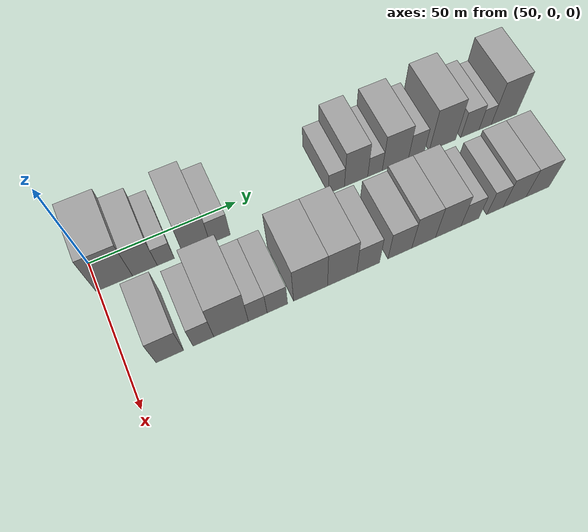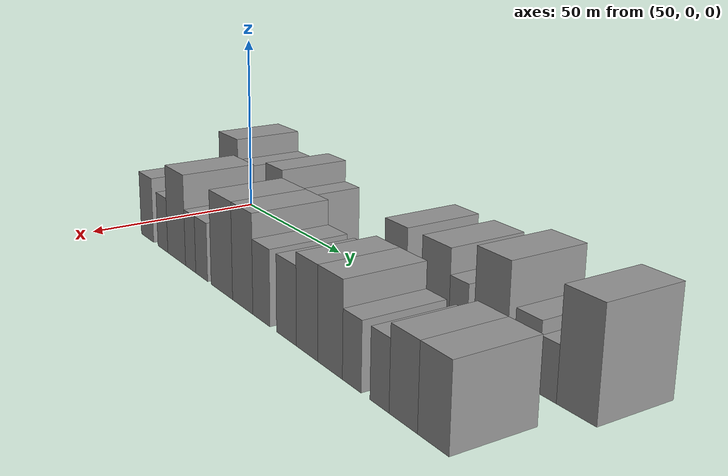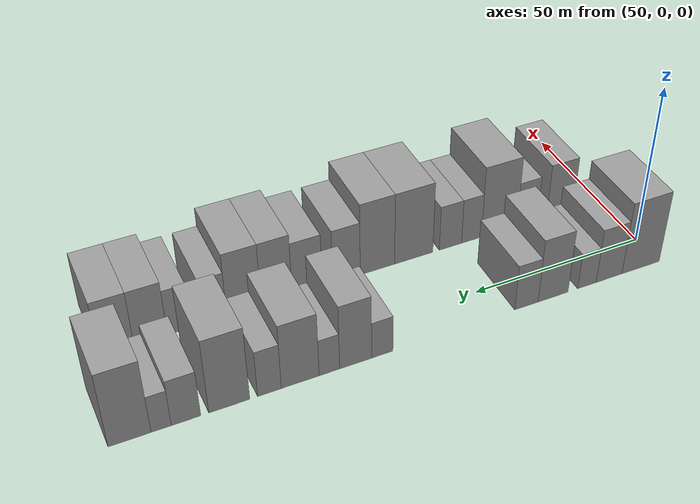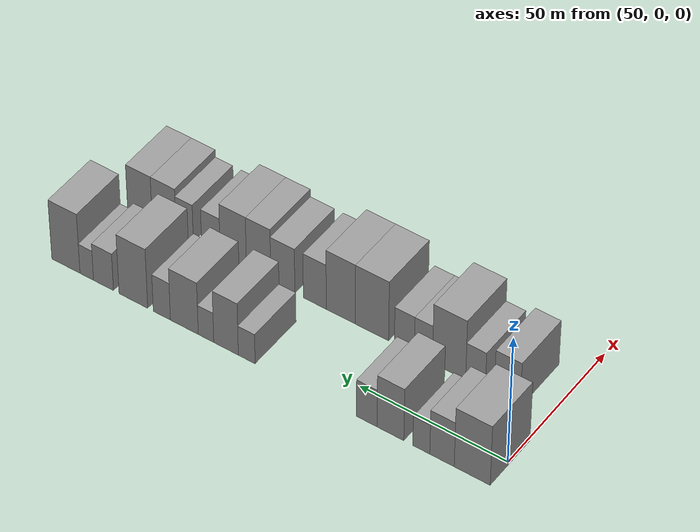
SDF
<sdf version="1.6">
 <world name="default">
  <model name="building_26">
   <static>1</static>
   <pose>50.0000 5.2599 0 0.000000 0.000000 0.000000</pose>
   <link name="link">
    <pose>0 0 12.00 0 0 0</pose>
    <collision name="collision"><geometry><box><size>20.0000 11.9224 24.0000</size></box></geometry></collision>
    <visual name="visual">
     <cast_shadows>0</cast_shadows>
     <geometry><box><size>20.0000 11.9224 24.0000</size></box></geometry>
     <material>
      <script>
       <uri>model://grey_wall/materials/scripts</uri>
       <uri>model://grey_wall/materials/textures</uri>
       <name>vrc/grey_wall</name>
      </script>
     </material>
    </visual>
   </link>
  </model>
  <model name="building_27">
   <static>1</static>
   <pose>50.0000 15.2924 0 0.000000 0.000000 0.000000</pose>
   <link name="link">
    <pose>0 0 9.00 0 0 0</pose>
    <collision name="collision"><geometry><box><size>20.0000 8.1427 18.0000</size></box></geometry></collision>
    <visual name="visual">
     <cast_shadows>0</cast_shadows>
     <geometry><box><size>20.0000 8.1427 18.0000</size></box></geometry>
     <material>
      <script>
       <uri>model://grey_wall/materials/scripts</uri>
       <uri>model://grey_wall/materials/textures</uri>
       <name>vrc/grey_wall</name>
      </script>
     </material>
    </visual>
   </link>
  </model>
  <model name="building_28">
   <static>1</static>
   <pose>50.0000 22.2158 0 0.000000 0.000000 0.000000</pose>
   <link name="link">
    <pose>0 0 6.00 0 0 0</pose>
    <collision name="collision"><geometry><box><size>20.0000 5.7040 12.0000</size></box></geometry></collision>
    <visual name="visual">
     <cast_shadows>0</cast_shadows>
     <geometry><box><size>20.0000 5.7040 12.0000</size></box></geometry>
     <material>
      <script>
       <uri>model://grey_wall/materials/scripts</uri>
       <uri>model://grey_wall/materials/textures</uri>
       <name>vrc/grey_wall</name>
      </script>
     </material>
    </visual>
   </link>
  </model>
  <model name="building_29">
   <static>1</static>
   <pose>50.0000 32.6058 0 0.000000 0.000000 0.000000</pose>
   <link name="link">
    <pose>0 0 10.50 0 0 0</pose>
    <collision name="collision"><geometry><box><size>20.0000 9.0759 21.0000</size></box></geometry></collision>
    <visual name="visual">
     <cast_shadows>0</cast_shadows>
     <geometry><box><size>20.0000 9.0759 21.0000</size></box></geometry>
     <material>
      <script>
       <uri>model://grey_wall/materials/scripts</uri>
       <uri>model://grey_wall/materials/textures</uri>
       <name>vrc/grey_wall</name>
      </script>
     </material>
    </visual>
   </link>
  </model>
  <model name="building_30">
   <static>1</static>
   <pose>50.0000 40.6264 0 0.000000 0.000000 0.000000</pose>
   <link name="link">
    <pose>0 0 7.50 0 0 0</pose>
    <collision name="collision"><geometry><box><size>20.0000 6.9654 15.0000</size></box></geometry></collision>
    <visual name="visual">
     <cast_shadows>0</cast_shadows>
     <geometry><box><size>20.0000 6.9654 15.0000</size></box></geometry>
     <material>
      <script>
       <uri>model://grey_wall/materials/scripts</uri>
       <uri>model://grey_wall/materials/textures</uri>
       <name>vrc/grey_wall</name>
      </script>
     </material>
    </visual>
   </link>
  </model>
  <model name="building_31">
   <static>1</static>
   <pose>50.0000 81.9017 0 0.000000 0.000000 0.000000</pose>
   <link name="link">
    <pose>0 0 6.00 0 0 0</pose>
    <collision name="collision"><geometry><box><size>20.0000 5.8618 12.0000</size></box></geometry></collision>
    <visual name="visual">
     <cast_shadows>0</cast_shadows>
     <geometry><box><size>20.0000 5.8618 12.0000</size></box></geometry>
     <material>
      <script>
       <uri>model://grey_wall/materials/scripts</uri>
       <uri>model://grey_wall/materials/textures</uri>
       <name>vrc/grey_wall</name>
      </script>
     </material>
    </visual>
   </link>
  </model>
  <model name="building_32">
   <static>1</static>
   <pose>50.0000 89.1438 0 0.000000 0.000000 0.000000</pose>
   <link name="link">
    <pose>0 0 10.50 0 0 0</pose>
    <collision name="collision"><geometry><box><size>20.0000 8.6224 21.0000</size></box></geometry></collision>
    <visual name="visual">
     <cast_shadows>0</cast_shadows>
     <geometry><box><size>20.0000 8.6224 21.0000</size></box></geometry>
     <material>
      <script>
       <uri>model://grey_wall/materials/scripts</uri>
       <uri>model://grey_wall/materials/textures</uri>
       <name>vrc/grey_wall</name>
      </script>
     </material>
    </visual>
   </link>
  </model>
  <model name="building_33">
   <static>1</static>
   <pose>50.0000 96.1727 0 0.000000 0.000000 0.000000</pose>
   <link name="link">
    <pose>0 0 6.00 0 0 0</pose>
    <collision name="collision"><geometry><box><size>20.0000 5.4354 12.0000</size></box></geometry></collision>
    <visual name="visual">
     <cast_shadows>0</cast_shadows>
     <geometry><box><size>20.0000 5.4354 12.0000</size></box></geometry>
     <material>
      <script>
       <uri>model://grey_wall/materials/scripts</uri>
       <uri>model://grey_wall/materials/textures</uri>
       <name>vrc/grey_wall</name>
      </script>
     </material>
    </visual>
   </link>
  </model>
  <model name="building_34">
   <static>1</static>
   <pose>50.0000 103.8210 0 0.000000 0.000000 0.000000</pose>
   <link name="link">
    <pose>0 0 10.50 0 0 0</pose>
    <collision name="collision"><geometry><box><size>20.0000 9.8612 21.0000</size></box></geometry></collision>
    <visual name="visual">
     <cast_shadows>0</cast_shadows>
     <geometry><box><size>20.0000 9.8612 21.0000</size></box></geometry>
     <material>
      <script>
       <uri>model://grey_wall/materials/scripts</uri>
       <uri>model://grey_wall/materials/textures</uri>
       <name>vrc/grey_wall</name>
      </script>
     </material>
    </visual>
   </link>
  </model>
  <model name="building_35">
   <static>1</static>
   <pose>50.0000 111.8027 0 0.000000 0.000000 0.000000</pose>
   <link name="link">
    <pose>0 0 7.50 0 0 0</pose>
    <collision name="collision"><geometry><box><size>20.0000 6.1020 15.0000</size></box></geometry></collision>
    <visual name="visual">
     <cast_shadows>0</cast_shadows>
     <geometry><box><size>20.0000 6.1020 15.0000</size></box></geometry>
     <material>
      <script>
       <uri>model://grey_wall/materials/scripts</uri>
       <uri>model://grey_wall/materials/textures</uri>
       <name>vrc/grey_wall</name>
      </script>
     </material>
    </visual>
   </link>
  </model>
  <model name="building_36">
   <static>1</static>
   <pose>50.0000 121.9957 0 0.000000 0.000000 0.000000</pose>
   <link name="link">
    <pose>0 0 12.00 0 0 0</pose>
    <collision name="collision"><geometry><box><size>20.0000 10.2840 24.0000</size></box></geometry></collision>
    <visual name="visual">
     <cast_shadows>0</cast_shadows>
     <geometry><box><size>20.0000 10.2840 24.0000</size></box></geometry>
     <material>
      <script>
       <uri>model://grey_wall/materials/scripts</uri>
       <uri>model://grey_wall/materials/textures</uri>
       <name>vrc/grey_wall</name>
      </script>
     </material>
    </visual>
   </link>
  </model>
  <model name="building_37">
   <static>1</static>
   <pose>50.0000 132.7473 0 0.000000 0.000000 0.000000</pose>
   <link name="link">
    <pose>0 0 7.50 0 0 0</pose>
    <collision name="collision"><geometry><box><size>20.0000 7.2192 15.0000</size></box></geometry></collision>
    <visual name="visual">
     <cast_shadows>0</cast_shadows>
     <geometry><box><size>20.0000 7.2192 15.0000</size></box></geometry>
     <material>
      <script>
       <uri>model://grey_wall/materials/scripts</uri>
       <uri>model://grey_wall/materials/textures</uri>
       <name>vrc/grey_wall</name>
      </script>
     </material>
    </visual>
   </link>
  </model>
  <model name="building_38">
   <static>1</static>
   <pose>50.0000 138.8024 0 0.000000 0.000000 0.000000</pose>
   <link name="link">
    <pose>0 0 6.00 0 0 0</pose>
    <collision name="collision"><geometry><box><size>20.0000 4.8910 12.0000</size></box></geometry></collision>
    <visual name="visual">
     <cast_shadows>0</cast_shadows>
     <geometry><box><size>20.0000 4.8910 12.0000</size></box></geometry>
     <material>
      <script>
       <uri>model://grey_wall/materials/scripts</uri>
       <uri>model://grey_wall/materials/textures</uri>
       <name>vrc/grey_wall</name>
      </script>
     </material>
    </visual>
   </link>
  </model>
  <model name="building_39">
   <static>1</static>
   <pose>50.0000 146.3720 0 0.000000 0.000000 0.000000</pose>
   <link name="link">
    <pose>0 0 12.00 0 0 0</pose>
    <collision name="collision"><geometry><box><size>20.0000 10.2482 24.0000</size></box></geometry></collision>
    <visual name="visual">
     <cast_shadows>0</cast_shadows>
     <geometry><box><size>20.0000 10.2482 24.0000</size></box></geometry>
     <material>
      <script>
       <uri>model://grey_wall/materials/scripts</uri>
       <uri>model://grey_wall/materials/textures</uri>
       <name>vrc/grey_wall</name>
      </script>
     </material>
    </visual>
   </link>
  </model>
  <model name="building_86">
   <static>1</static>
   <pose>79.0000 12.7780 0 0.000000 0.000000 0.000000</pose>
   <link name="link">
    <pose>0 0 9.00 0 0 0</pose>
    <collision name="collision"><geometry><box><size>20.0000 8.6997 18.0000</size></box></geometry></collision>
    <visual name="visual">
     <cast_shadows>0</cast_shadows>
     <geometry><box><size>20.0000 8.6997 18.0000</size></box></geometry>
     <material>
      <script>
       <uri>model://grey_wall/materials/scripts</uri>
       <uri>model://grey_wall/materials/textures</uri>
       <name>vrc/grey_wall</name>
      </script>
     </material>
    </visual>
   </link>
  </model>
  <model name="building_87">
   <static>1</static>
   <pose>79.0000 23.4597 0 0.000000 0.000000 0.000000</pose>
   <link name="link">
    <pose>0 0 7.50 0 0 0</pose>
    <collision name="collision"><geometry><box><size>20.0000 6.6637 15.0000</size></box></geometry></collision>
    <visual name="visual">
     <cast_shadows>0</cast_shadows>
     <geometry><box><size>20.0000 6.6637 15.0000</size></box></geometry>
     <material>
      <script>
       <uri>model://grey_wall/materials/scripts</uri>
       <uri>model://grey_wall/materials/textures</uri>
       <name>vrc/grey_wall</name>
      </script>
     </material>
    </visual>
   </link>
  </model>
  <model name="building_88">
   <static>1</static>
   <pose>79.0000 32.4329 0 0.000000 0.000000 0.000000</pose>
   <link name="link">
    <pose>0 0 12.00 0 0 0</pose>
    <collision name="collision"><geometry><box><size>20.0000 11.2827 24.0000</size></box></geometry></collision>
    <visual name="visual">
     <cast_shadows>0</cast_shadows>
     <geometry><box><size>20.0000 11.2827 24.0000</size></box></geometry>
     <material>
      <script>
       <uri>model://grey_wall/materials/scripts</uri>
       <uri>model://grey_wall/materials/textures</uri>
       <name>vrc/grey_wall</name>
      </script>
     </material>
    </visual>
   </link>
  </model>
  <model name="building_89">
   <static>1</static>
   <pose>79.0000 41.1696 0 0.000000 0.000000 0.000000</pose>
   <link name="link">
    <pose>0 0 7.50 0 0 0</pose>
    <collision name="collision"><geometry><box><size>20.0000 6.1907 15.0000</size></box></geometry></collision>
    <visual name="visual">
     <cast_shadows>0</cast_shadows>
     <geometry><box><size>20.0000 6.1907 15.0000</size></box></geometry>
     <material>
      <script>
       <uri>model://grey_wall/materials/scripts</uri>
       <uri>model://grey_wall/materials/textures</uri>
       <name>vrc/grey_wall</name>
      </script>
     </material>
    </visual>
   </link>
  </model>
  <model name="building_90">
   <static>1</static>
   <pose>79.0000 47.6889 0 0.000000 0.000000 0.000000</pose>
   <link name="link">
    <pose>0 0 7.50 0 0 0</pose>
    <collision name="collision"><geometry><box><size>20.0000 6.8479 15.0000</size></box></geometry></collision>
    <visual name="visual">
     <cast_shadows>0</cast_shadows>
     <geometry><box><size>20.0000 6.8479 15.0000</size></box></geometry>
     <material>
      <script>
       <uri>model://grey_wall/materials/scripts</uri>
       <uri>model://grey_wall/materials/textures</uri>
       <name>vrc/grey_wall</name>
      </script>
     </material>
    </visual>
   </link>
  </model>
  <model name="building_91">
   <static>1</static>
   <pose>79.0000 58.8904 0 0.000000 0.000000 0.000000</pose>
   <link name="link">
    <pose>0 0 12.00 0 0 0</pose>
    <collision name="collision"><geometry><box><size>20.0000 11.5549 24.0000</size></box></geometry></collision>
    <visual name="visual">
     <cast_shadows>0</cast_shadows>
     <geometry><box><size>20.0000 11.5549 24.0000</size></box></geometry>
     <material>
      <script>
       <uri>model://grey_wall/materials/scripts</uri>
       <uri>model://grey_wall/materials/textures</uri>
       <name>vrc/grey_wall</name>
      </script>
     </material>
    </visual>
   </link>
  </model>
  <model name="building_92">
   <static>1</static>
   <pose>79.0000 69.7331 0 0.000000 0.000000 0.000000</pose>
   <link name="link">
    <pose>0 0 12.00 0 0 0</pose>
    <collision name="collision"><geometry><box><size>20.0000 10.1305 24.0000</size></box></geometry></collision>
    <visual name="visual">
     <cast_shadows>0</cast_shadows>
     <geometry><box><size>20.0000 10.1305 24.0000</size></box></geometry>
     <material>
      <script>
       <uri>model://grey_wall/materials/scripts</uri>
       <uri>model://grey_wall/materials/textures</uri>
       <name>vrc/grey_wall</name>
      </script>
     </material>
    </visual>
   </link>
  </model>
  <model name="building_93">
   <static>1</static>
   <pose>79.0000 78.8061 0 0.000000 0.000000 0.000000</pose>
   <link name="link">
    <pose>0 0 9.00 0 0 0</pose>
    <collision name="collision"><geometry><box><size>20.0000 8.0155 18.0000</size></box></geometry></collision>
    <visual name="visual">
     <cast_shadows>0</cast_shadows>
     <geometry><box><size>20.0000 8.0155 18.0000</size></box></geometry>
     <material>
      <script>
       <uri>model://grey_wall/materials/scripts</uri>
       <uri>model://grey_wall/materials/textures</uri>
       <name>vrc/grey_wall</name>
      </script>
     </material>
    </visual>
   </link>
  </model>
  <model name="building_94">
   <static>1</static>
   <pose>79.0000 90.0662 0 0.000000 0.000000 0.000000</pose>
   <link name="link">
    <pose>0 0 9.00 0 0 0</pose>
    <collision name="collision"><geometry><box><size>20.0000 8.5048 18.0000</size></box></geometry></collision>
    <visual name="visual">
     <cast_shadows>0</cast_shadows>
     <geometry><box><size>20.0000 8.5048 18.0000</size></box></geometry>
     <material>
      <script>
       <uri>model://grey_wall/materials/scripts</uri>
       <uri>model://grey_wall/materials/textures</uri>
       <name>vrc/grey_wall</name>
      </script>
     </material>
    </visual>
   </link>
  </model>
  <model name="building_95">
   <static>1</static>
   <pose>79.0000 98.6277 0 0.000000 0.000000 0.000000</pose>
   <link name="link">
    <pose>0 0 10.50 0 0 0</pose>
    <collision name="collision"><geometry><box><size>20.0000 8.6181 21.0000</size></box></geometry></collision>
    <visual name="visual">
     <cast_shadows>0</cast_shadows>
     <geometry><box><size>20.0000 8.6181 21.0000</size></box></geometry>
     <material>
      <script>
       <uri>model://grey_wall/materials/scripts</uri>
       <uri>model://grey_wall/materials/textures</uri>
       <name>vrc/grey_wall</name>
      </script>
     </material>
    </visual>
   </link>
  </model>
  <model name="building_96">
   <static>1</static>
   <pose>79.0000 107.6361 0 0.000000 0.000000 0.000000</pose>
   <link name="link">
    <pose>0 0 10.50 0 0 0</pose>
    <collision name="collision"><geometry><box><size>20.0000 9.3988 21.0000</size></box></geometry></collision>
    <visual name="visual">
     <cast_shadows>0</cast_shadows>
     <geometry><box><size>20.0000 9.3988 21.0000</size></box></geometry>
     <material>
      <script>
       <uri>model://grey_wall/materials/scripts</uri>
       <uri>model://grey_wall/materials/textures</uri>
       <name>vrc/grey_wall</name>
      </script>
     </material>
    </visual>
   </link>
  </model>
  <model name="building_97">
   <static>1</static>
   <pose>79.0000 115.6585 0 0.000000 0.000000 0.000000</pose>
   <link name="link">
    <pose>0 0 7.50 0 0 0</pose>
    <collision name="collision"><geometry><box><size>20.0000 6.6461 15.0000</size></box></geometry></collision>
    <visual name="visual">
     <cast_shadows>0</cast_shadows>
     <geometry><box><size>20.0000 6.6461 15.0000</size></box></geometry>
     <material>
      <script>
       <uri>model://grey_wall/materials/scripts</uri>
       <uri>model://grey_wall/materials/textures</uri>
       <name>vrc/grey_wall</name>
      </script>
     </material>
    </visual>
   </link>
  </model>
  <model name="building_98">
   <static>1</static>
   <pose>79.0000 125.1014 0 0.000000 0.000000 0.000000</pose>
   <link name="link">
    <pose>0 0 7.50 0 0 0</pose>
    <collision name="collision"><geometry><box><size>20.0000 6.2397 15.0000</size></box></geometry></collision>
    <visual name="visual">
     <cast_shadows>0</cast_shadows>
     <geometry><box><size>20.0000 6.2397 15.0000</size></box></geometry>
     <material>
      <script>
       <uri>model://grey_wall/materials/scripts</uri>
       <uri>model://grey_wall/materials/textures</uri>
       <name>vrc/grey_wall</name>
      </script>
     </material>
    </visual>
   </link>
  </model>
  <model name="building_99">
   <static>1</static>
   <pose>79.0000 132.5782 0 0.000000 0.000000 0.000000</pose>
   <link name="link">
    <pose>0 0 9.00 0 0 0</pose>
    <collision name="collision"><geometry><box><size>20.0000 8.7138 18.0000</size></box></geometry></collision>
    <visual name="visual">
     <cast_shadows>0</cast_shadows>
     <geometry><box><size>20.0000 8.7138 18.0000</size></box></geometry>
     <material>
      <script>
       <uri>model://grey_wall/materials/scripts</uri>
       <uri>model://grey_wall/materials/textures</uri>
       <name>vrc/grey_wall</name>
      </script>
     </material>
    </visual>
   </link>
  </model>
  <model name="building_100">
   <static>1</static>
   <pose>79.0000 141.4201 0 0.000000 0.000000 0.000000</pose>
   <link name="link">
    <pose>0 0 9.00 0 0 0</pose>
    <collision name="collision"><geometry><box><size>20.0000 8.9702 18.0000</size></box></geometry></collision>
    <visual name="visual">
     <cast_shadows>0</cast_shadows>
     <geometry><box><size>20.0000 8.9702 18.0000</size></box></geometry>
     <material>
      <script>
       <uri>model://grey_wall/materials/scripts</uri>
       <uri>model://grey_wall/materials/textures</uri>
       <name>vrc/grey_wall</name>
      </script>
     </material>
    </visual>
   </link>
  </model>
 </world>
</sdf>
